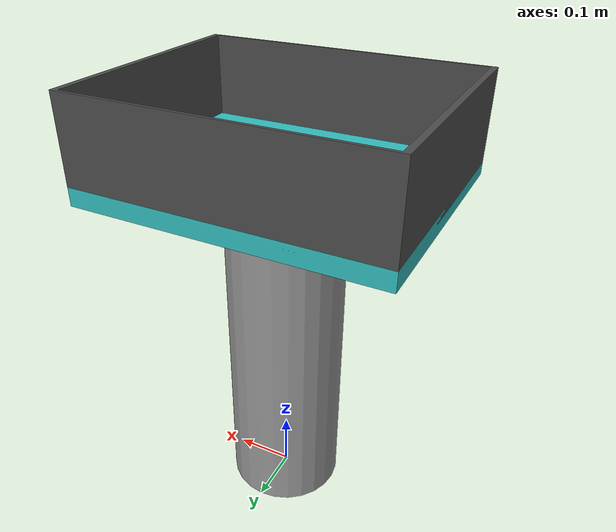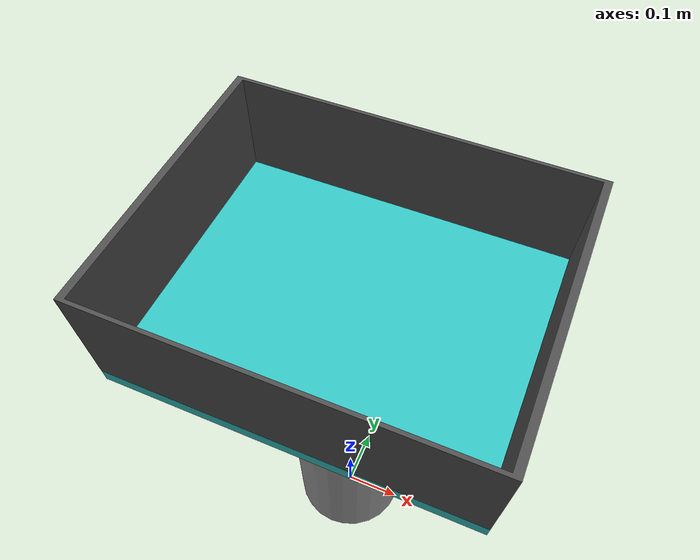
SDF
<?xml version="1.0"?>
<sdf version="1.5">

  <model name="table_bin">
    <static>true</static>

    <link name="column_link">
      <collision name="column">
        <pose>0 0 0.3 0 0 0</pose>
        <geometry>
          <box>
            <size>0.4 0.5 .6 </size>
          </box>
        </geometry>
        <surface>
          <friction>
            <ode>
              <mu>0.6</mu>
              <mu2>0.6</mu2>
            </ode>
          </friction>
        </surface>
      </collision>
      <visual name="column">
        <pose>0 0 0.3 0 0 0</pose>
        <geometry>
          <cylinder>
            <radius>0.1</radius>
            <length>0.6</length>
          </cylinder>
        </geometry>
        <material>
          <script>
            <uri>file://media/materials/scripts/gazebo.material</uri>
            <name>PR2/Grey4</name>
          </script>
        </material>
      </visual>
    </link>

    <joint name="column2table" type="revolute">
      <parent>column_link</parent>
      <child>table_link</child>
      <pose>0 0 0.3 0 0 0</pose>
    </joint>

    <link name="table_link">

      <collision name="surface">
        <pose>0 0 0.6 0 0 0</pose>
        <geometry>
          <box>
            <size>0.5 0.4 0.03</size>
          </box>
        </geometry>
        <surface>
          <friction>
            <ode>
              <mu>0.6</mu>
              <mu2>0.6</mu2>
            </ode>
          </friction>
        </surface>
      </collision>
      <visual name="surface">
        <pose>0 0 0.6 0 0 0</pose>
        <geometry>
          <box>
            <size>0.5 0.4 0.03</size>
          </box>
        </geometry>
        <material>
          <script>
            <uri>file://media/materials/scripts/gazebo.material</uri>
            <name>Gazebo/Turquoise </name>
          </script>
        </material>
      </visual>
    </link>

    <joint name="table2bin" type="prismatic">
      <parent>table_link</parent>
      <child>bin_link</child>
      <pose>0 0 1 0 0 0</pose>
      <axis>
        <xyz>0 0 1</xyz>
      </axis>
    </joint>

    <link name="bin_link">

      <collision name="bin">
        <pose>0 0 0.68 0 0 0</pose>

        <geometry>
          <mesh>
            <uri>model://table_bin/meshes/big_bin.stl</uri>
          </mesh>
        </geometry>
      </collision>

      <visual name="bin">
        <pose>0 0 0.68 0 0 0</pose>

        <geometry>
          <mesh>
            <uri>model://table_bin/meshes/big_bin.dae</uri>
          </mesh>
        </geometry>

        <material>
          <script>
            <uri>file://media/materials/scripts/gazebo.material</uri>
            <name>Gazebo/DarkGrey </name>
          </script>
        </material>

      </visual>
    </link>

  </model>

</sdf>
